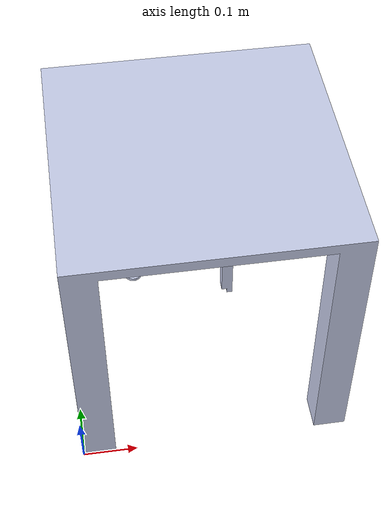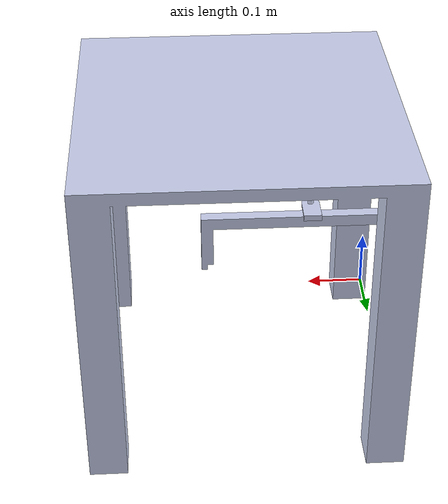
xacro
<?xml version="1.0"?>
<robot  name="aa">
 <link
    name="base_link">
    <inertial>
      <origin
        xyz="0.15 0.15 0.15"
        rpy="0 0 0" />
      <mass
        value="6" />
      <inertia
        ixx="0"
        ixy="0"
        ixz="0"
        iyy="0"
        iyz="0"
        izz="0" />
    </inertial>
    <visual>
      <origin
        xyz="0 0 0"
        rpy="0 0 0" />
      <geometry>
        <mesh
          filename="package://robot_sim/meshes/base_link.STL" />
      </geometry>
      <material
        name="">
        <color
          rgba="0.792156862745098 0.819607843137255 0.933333333333333 1" />
      </material>
    </visual>
    <collision>
      <origin
        xyz="0 0 0"
        rpy="0 0 0" />
      <geometry>
        <mesh
          filename="package://robot_sim/meshes/base_link.STL" />
      </geometry>
    </collision>
  </link>

<link
    name="L1">
    <inertial>
      <origin
        xyz="0.14 0.00999999999999998 0.0647872340425532"
        rpy="0 0 0" />
      <mass
        value="0.188" />
      <inertia
        ixx="0"
        ixy="0"
        ixz="0"
        iyy="0"
        iyz="0"
        izz="0" />
    </inertial>
    <visual>
      <origin
        xyz="0 0 0"
        rpy="0 0 0" />
      <geometry>
        <mesh
          filename="package://robot_sim/meshes/L1.STL" />
      </geometry>
      <material
        name="">
        <color
          rgba="0.792156862745098 0.819607843137255 0.933333333333333 1" />
      </material>
    </visual>
    <collision>
      <origin
        xyz="0 0 0"
        rpy="0 0 0" />
      <geometry>
        <mesh
          filename="package://robot_sim/meshes/L1.STL" />
      </geometry>
    </collision>
  </link>

<joint name="J1" type="prismatic">
   <parent link="base_link"/>
   <child link="L1"/>
   <limit effort="1000.0" lower="-100" upper="100" velocity="0.5"/>
   <origin rpy="0 0 0" xyz="0.01 0.197440112838672 0.2"/>
   <axis
     xyz="0 1 0" />
 </joint>

  <transmission name="j1t">
     <type>transmission_interface/SimpleTransmission</type>
     <actuator name="motor1">
       <mechanicalReduction>1</mechanicalReduction>
     </actuator>
     <joint name="J1">
       <hardwareInterface>hardware_interface/PositionJointInterface</hardwareInterface>
     </joint>
   </transmission>

<link
    name="L2">
    <inertial>
      <origin
        xyz="0.015 0.0014799004971911 0.00165487689757998"
        rpy="0 0 0" />
      <mass
        value="0.00887444678594554" />
      <inertia
        ixx="0"
        ixy="0"
        ixz="0"
        iyy="0"
        iyz="0"
        izz="0" />
    </inertial>
    <visual>
      <origin
        xyz="0 0 0"
        rpy="0 0 0" />
      <geometry>
        <mesh
          filename="package://robot_sim/meshes/L2.STL" />
      </geometry>
      <material
        name="">
        <color
          rgba="0.792156862745098 0.819607843137255 0.933333333333333 1" />
      </material>
    </visual>
    <collision>
      <origin
        xyz="0 0 0"
        rpy="0 0 0" />
      <geometry>
        <mesh
          filename="package://robot_sim/meshes/L2.STL" />
      </geometry>
    </collision>
  </link>

 <joint name="J2" type="prismatic">
    <parent link="L1"/>
    <child link="L2"/>
    <limit effort="1000.0" lower="-100" upper="100" velocity="0.5"/>
    <origin rpy="0 0 0" xyz=".1 0.0 .09"/>

  </joint>

<transmission name="j2t">
     <type>transmission_interface/SimpleTransmission</type>
     <actuator name="motor2">
       <mechanicalReduction>1</mechanicalReduction>
     </actuator>
     <joint name="J2">
       <hardwareInterface>hardware_interface/PositionJointInterface</hardwareInterface>
     </joint>
   </transmission>

<link
    name="L3">
    <inertial>
      <origin
       xyz="0.015 -0.0150 0"
        rpy="0 0 0" />
      <mass
        value="0.0117809724509617" />
      <inertia
        ixx="0"
        ixy="0"
        ixz="0"
        iyy="0"
        iyz="0"
        izz="0" />
    </inertial>
    <visual>
      <origin
        xyz="0.015 -0.0150 0"
        rpy="0 0 0" />
      <geometry>
        <mesh
          filename="package://robot_sim/meshes/L3.STL" />
      </geometry>
      <material
        name="">
        <color
          rgba="0.792156862745098 0.819607843137255 0.933333333333333 1" />
      </material>
    </visual>
    <collision>
      <origin
        xyz="0.015 -0.0150 0"
        rpy="0 0 0" />
      <geometry>
        <mesh
          filename="package://robot_sim/meshes/L3.STL" />
      </geometry>
    </collision>
  </link>

 <joint name="J3" type="prismatic">
    <parent link="L2"/>
    <child link="L3"/>
    <limit effort="1000.0" lower="0" upper="0.09" velocity="0.5"/>
    <origin rpy="0 0 0" xyz="0.0 -0.0 0"/>
    <axis xyz="0 0 -1" />
  </joint>

 <transmission name="j3t">
    <type>transmission_interface/SimpleTransmission</type>
    <actuator name="motor">
      <mechanicalReduction>1</mechanicalReduction>
    </actuator>
    <joint name="J3">
      <hardwareInterface>hardware_interface/PositionJointInterface</hardwareInterface>
    </joint>
  </transmission>

  <!-- Gazebo plugin for ROS Control -->
  <gazebo>
    <plugin name="gazebo_ros_control" filename="libgazebo_ros_control.so">
      <robotNamespace>/</robotNamespace>
    </plugin>
</gazebo>

  </robot>
